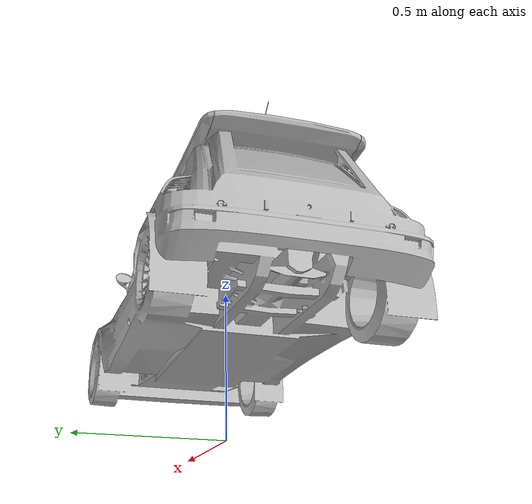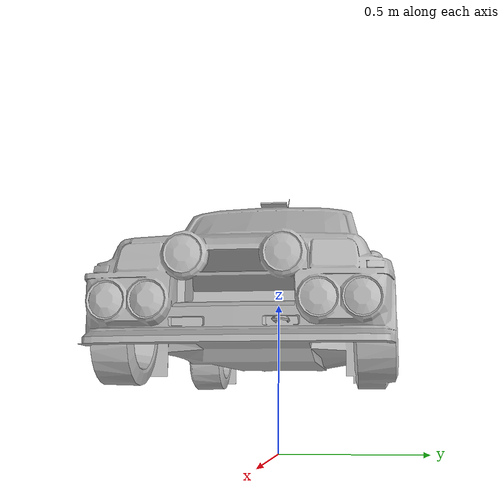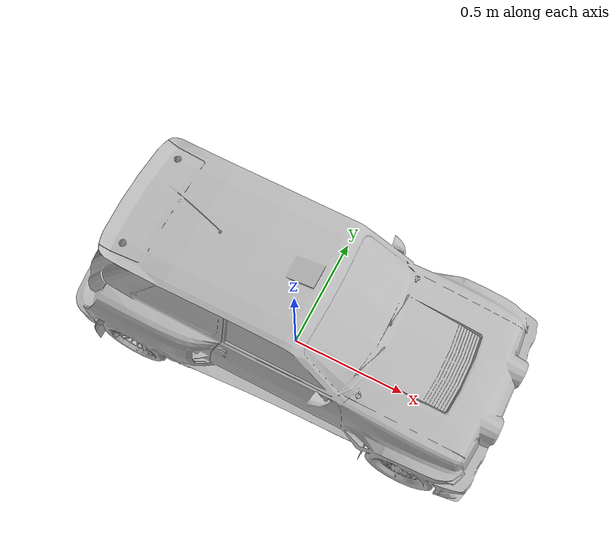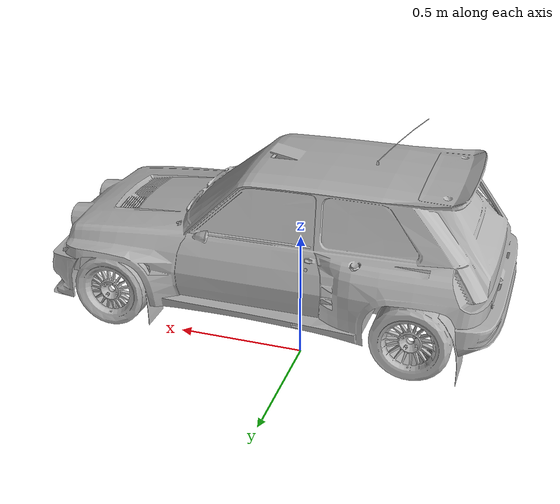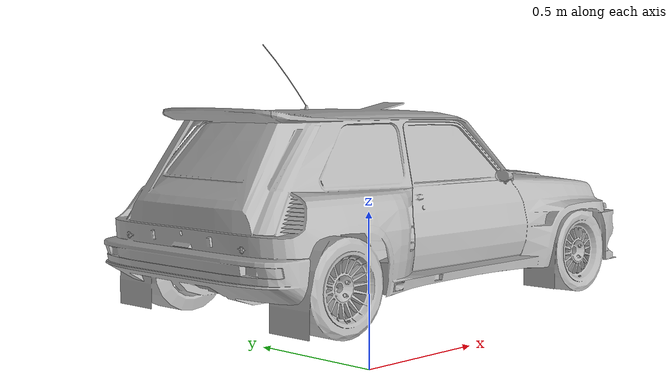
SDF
<?xml version="1.0" ?>
<sdf version="1.6">
  <model name="car2">
    <static>true</static>
    <link name="link">
      <visual name="visual">
        <pose>0 0 0.5 1.570796 0 -1.570796</pose>
        <geometry>
          <mesh>
            <scale>2 2 2</scale>
            <uri>model://car2/models/model_normalized.obj</uri>
          </mesh>
        </geometry>
      </visual>
    </link>
  </model>
</sdf>
